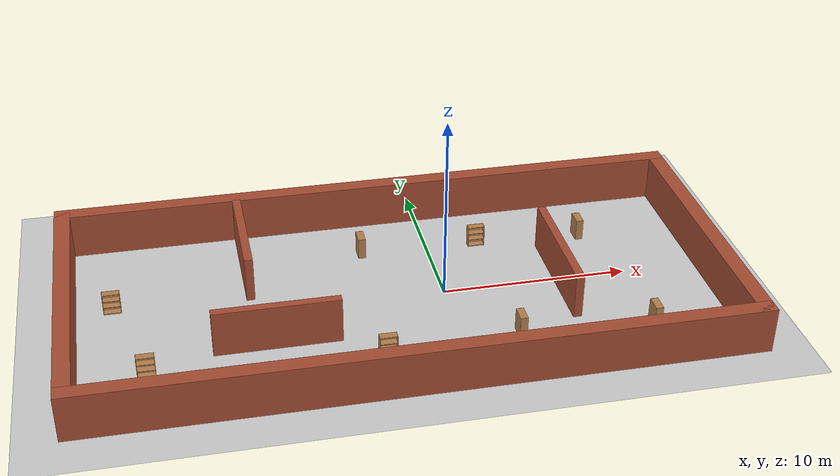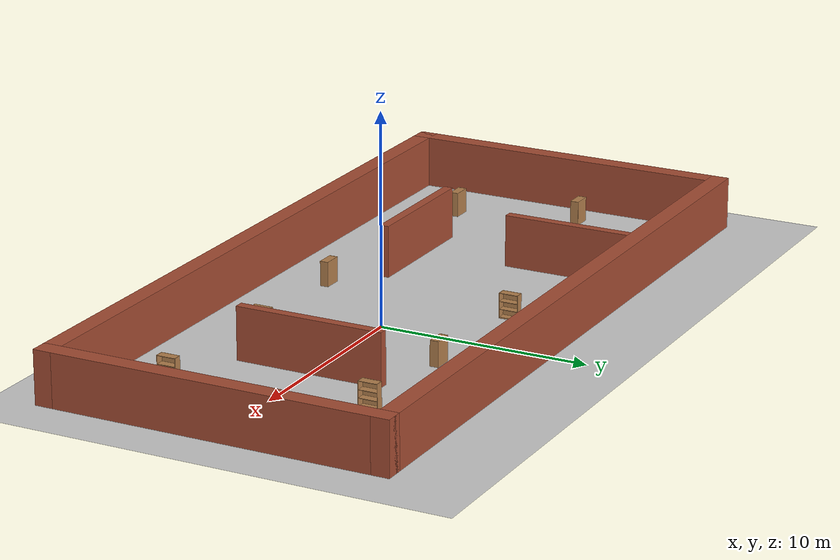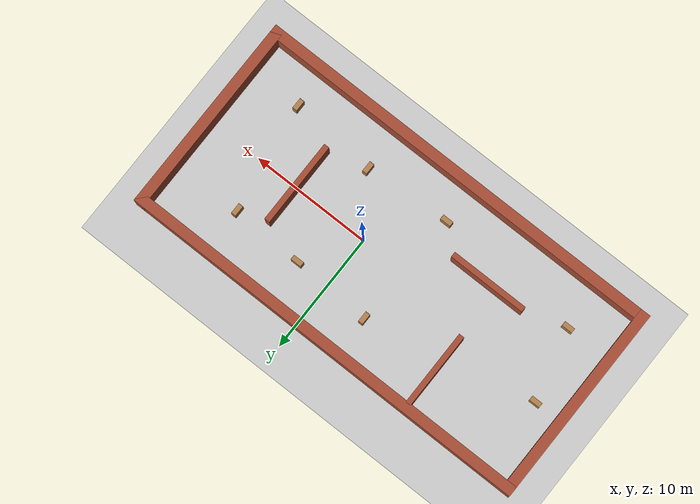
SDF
<sdf version="1.6">
 <world name="default">
  <light name="sun" type="directional">
   <pose>0 0 10 0 -0 0</pose>
   <diffuse>0.8 0.8 0.8 1</diffuse>
   <specular>0.1 0.1 0.1 1</specular>
   <attenuation>
    <range>1000</range>
    <constant>0.9</constant>
    <linear>0.01</linear>
    <quadratic>0.001</quadratic>
   </attenuation>
   <direction>-0.5 0.5 -1</direction>
  </light>
  <model name="ground_plane">
   <static>1</static>
   <link name="link">
    <collision name="collision">
     <geometry><plane><normal>0 0 1</normal><size>100 100</size></plane></geometry>
     <surface><friction><ode><mu>100</mu><mu2>50</mu2></ode></friction></surface>
    </collision>
    <visual name="visual">
     <cast_shadows>0</cast_shadows>
     <geometry><plane><normal>0 0 1</normal><size>100 100</size></plane></geometry>
     <material>
      <script><uri>file://media/materials/scripts/gazebo.material</uri><name>Gazebo/Grey</name></script>
     </material>
    </visual>
   </link>
  </model>
  <gravity>0 0 -9.8</gravity>
  <magnetic_field>6e-06 2.3e-05 -4.2e-05</magnetic_field>
  <atmosphere type="adiabatic"/>
  <physics name="default_physics" default="0" type="ode">
   <max_step_size>0.001</max_step_size>
   <real_time_factor>1</real_time_factor>
   <real_time_update_rate>1000</real_time_update_rate>
  </physics>
  <scene><ambient>0.4 0.4 0.4 1</ambient><background>0.7 0.7 0.7 1</background><shadows>1</shadows></scene>
  <spherical_coordinates>
   <surface_model>EARTH_WGS84</surface_model>
   <latitude_deg>0</latitude_deg>
   <longitude_deg>0</longitude_deg>
   <elevation>0</elevation>
   <heading_deg>0</heading_deg>
  </spherical_coordinates>
  <model name="fun">
   <pose>-2.6 -0.04 0 0 -0 0</pose>
   <link name="Wall_10">
    <collision name="Wall_10_Collision">
     <geometry><box><size>16.6995 0.85 2.5</size></box></geometry>
     <pose>0 0 1.25 0 -0 0</pose>
    </collision>
    <visual name="Wall_10_Visual">
     <pose>0 0 1.25 0 -0 0</pose>
     <geometry><box><size>16.6995 0.85 2.5</size></box></geometry>
     <material>
      <script><uri>file://media/materials/scripts/gazebo.material</uri><name>Gazebo/Bricks</name></script>
      <ambient>1 1 1 1</ambient>
     </material>
    </visual>
    <pose>-17.05 0 0 0 0 -1.5708</pose>
   </link>
   <link name="Wall_12">
    <collision name="Wall_12_Collision">
     <geometry><box><size>7.05016 0.45 2.5</size></box></geometry>
     <pose>0 0 1.25 0 -0 0</pose>
    </collision>
    <visual name="Wall_12_Visual">
     <pose>0 0 1.25 0 -0 0</pose>
     <geometry><box><size>7.05016 0.45 2.5</size></box></geometry>
     <material>
      <script><uri>file://media/materials/scripts/gazebo.material</uri><name>Gazebo/Bricks</name></script>
      <ambient>1 1 1 1</ambient>
     </material>
    </visual>
    <pose>8.87 -0.038 0 0 0 -1.5708</pose>
   </link>
   <link name="Wall_14">
    <collision name="Wall_14_Collision">
     <geometry><box><size>6.54989 0.45 2.5</size></box></geometry>
     <pose>0 0 1.25 0 -0 0</pose>
    </collision>
    <visual name="Wall_14_Visual">
     <pose>0 0 1.25 0 -0 0</pose>
     <geometry><box><size>6.54989 0.45 2.5</size></box></geometry>
     <material>
      <script><uri>file://media/materials/scripts/gazebo.material</uri><name>Gazebo/Bricks</name></script>
      <ambient>1 1 1 1</ambient>
     </material>
    </visual>
    <pose>-6.645 -2.998 0 0 -0 0</pose>
   </link>
   <link name="Wall_16">
    <collision name="Wall_16_Collision">
     <geometry><box><size>6.30047 0.45 2.5</size></box></geometry>
     <pose>0 0 1.25 0 -0 0</pose>
    </collision>
    <visual name="Wall_16_Visual">
     <pose>0 0 1.25 0 -0 0</pose>
     <geometry><box><size>6.30047 0.45 2.5</size></box></geometry>
     <material>
      <script><uri>file://media/materials/scripts/gazebo.material</uri><name>Gazebo/Bricks</name></script>
      <ambient>1 1 1 1</ambient>
     </material>
    </visual>
    <pose>-7.555 4.457 0 0 0 -1.5708</pose>
   </link>
   <link name="Wall_5">
    <collision name="Wall_5_Collision">
     <geometry><box><size>34.9504 0.85 2.5</size></box></geometry>
     <pose>0 0 1.25 0 -0 0</pose>
    </collision>
    <visual name="Wall_5_Visual">
     <pose>0 0 1.25 0 -0 0</pose>
     <geometry><box><size>34.9504 0.85 2.5</size></box></geometry>
     <material>
      <script><uri>file://media/materials/scripts/gazebo.material</uri><name>Gazebo/Bricks</name></script>
      <ambient>1 1 1 1</ambient>
     </material>
    </visual>
    <pose>0 7.925 0 0 -0 0</pose>
   </link>
   <link name="Wall_6">
    <collision name="Wall_6_Collision">
     <geometry><box><size>16.7 0.85 2.5</size></box></geometry>
     <pose>0 0 1.25 0 -0 0</pose>
    </collision>
    <visual name="Wall_6_Visual">
     <pose>0 0 1.25 0 -0 0</pose>
     <geometry><box><size>16.7 0.85 2.5</size></box></geometry>
     <material>
      <script><uri>file://media/materials/scripts/gazebo.material</uri><name>Gazebo/Bricks</name></script>
      <ambient>1 1 1 1</ambient>
     </material>
    </visual>
    <pose>17.05 0 0 0 0 -1.5708</pose>
   </link>
   <link name="Wall_7">
    <collision name="Wall_7_Collision">
     <geometry><box><size>34.95 0.85 2.5</size></box></geometry>
     <pose>0 0 1.25 0 -0 0</pose>
    </collision>
    <visual name="Wall_7_Visual">
     <pose>0 0 1.25 0 -0 0</pose>
     <geometry><box><size>34.95 0.85 2.5</size></box></geometry>
     <material>
      <script><uri>file://media/materials/scripts/gazebo.material</uri><name>Gazebo/Bricks</name></script>
      <ambient>1 1 1 1</ambient>
     </material>
    </visual>
    <pose>0 -7.925 0 0 -0 3.14159</pose>
   </link>
   <static>1</static>
  </model>
  <model name="bookshelf_clone">
   <static>1</static>
   <link name="link">
    <inertial><mass>1</mass></inertial>
    <collision name="back">
     <pose>0 0.005 0.6 0 -0 0</pose>
     <geometry><box><size>0.9 0.01 1.2</size></box></geometry>
    </collision>
    <visual name="visual1">
     <pose>0 0.005 0.6 0 -0 0</pose>
     <geometry><box><size>0.9 0.01 1.2</size></box></geometry>
     <material>
      <script><uri>file://media/materials/scripts/gazebo.material</uri><name>Gazebo/Wood</name></script>
     </material>
    </visual>
    <collision name="left_side">
     <pose>0.45 -0.195 0.6 0 -0 0</pose>
     <geometry><box><size>0.02 0.4 1.2</size></box></geometry>
    </collision>
    <visual name="visual2">
     <pose>0.45 -0.195 0.6 0 -0 0</pose>
     <geometry><box><size>0.02 0.4 1.2</size></box></geometry>
     <material>
      <script><uri>file://media/materials/scripts/gazebo.material</uri><name>Gazebo/Wood</name></script>
     </material>
    </visual>
    <collision name="right_side">
     <pose>-0.45 -0.195 0.6 0 -0 0</pose>
     <geometry><box><size>0.02 0.4 1.2</size></box></geometry>
    </collision>
    <visual name="visual3">
     <pose>-0.45 -0.195 0.6 0 -0 0</pose>
     <geometry><box><size>0.02 0.4 1.2</size></box></geometry>
     <material>
      <script><uri>file://media/materials/scripts/gazebo.material</uri><name>Gazebo/Wood</name></script>
     </material>
    </visual>
    <collision name="bottom">
     <pose>0 -0.195 0.03 0 -0 0</pose>
     <geometry><box><size>0.88 0.4 0.06</size></box></geometry>
    </collision>
    <visual name="visual4">
     <pose>0 -0.195 0.03 0 -0 0</pose>
     <geometry><box><size>0.88 0.4 0.06</size></box></geometry>
     <material>
      <script><uri>file://media/materials/scripts/gazebo.material</uri><name>Gazebo/Wood</name></script>
     </material>
    </visual>
    <collision name="top">
     <pose>0 -0.195 1.19 0 -0 0</pose>
     <geometry><box><size>0.88 0.4 0.02</size></box></geometry>
    </collision>
    <visual name="visual5">
     <pose>0 -0.195 1.19 0 -0 0</pose>
     <geometry><box><size>0.88 0.4 0.02</size></box></geometry>
     <material>
      <script><uri>file://media/materials/scripts/gazebo.material</uri><name>Gazebo/Wood</name></script>
     </material>
    </visual>
    <collision name="low_shelf">
     <pose>0 -0.195 0.43 0 -0 0</pose>
     <geometry><box><size>0.88 0.4 0.02</size></box></geometry>
    </collision>
    <visual name="visual6">
     <pose>0 -0.195 0.43 0 -0 0</pose>
     <geometry><box><size>0.88 0.4 0.02</size></box></geometry>
     <material>
      <script><uri>file://media/materials/scripts/gazebo.material</uri><name>Gazebo/Wood</name></script>
     </material>
    </visual>
    <collision name="high_shelf">
     <pose>0 -0.195 0.8 0 -0 0</pose>
     <geometry><box><size>0.88 0.4 0.02</size></box></geometry>
    </collision>
    <visual name="visual7">
     <pose>0 -0.195 0.8 0 -0 0</pose>
     <geometry><box><size>0.88 0.4 0.02</size></box></geometry>
     <material>
      <script><uri>file://media/materials/scripts/gazebo.material</uri><name>Gazebo/Wood</name></script>
     </material>
    </visual>
   </link>
   <pose>2.79544 4.49303 0 0 -0 0</pose>
  </model>
  <model name="bookshelf_clone_0">
   <static>1</static>
   <link name="link">
    <inertial><mass>1</mass></inertial>
    <collision name="back">
     <pose>0 0.005 0.6 0 -0 0</pose>
     <geometry><box><size>0.9 0.01 1.2</size></box></geometry>
    </collision>
    <visual name="visual1">
     <pose>0 0.005 0.6 0 -0 0</pose>
     <geometry><box><size>0.9 0.01 1.2</size></box></geometry>
     <material>
      <script><uri>file://media/materials/scripts/gazebo.material</uri><name>Gazebo/Wood</name></script>
     </material>
    </visual>
    <collision name="left_side">
     <pose>0.45 -0.195 0.6 0 -0 0</pose>
     <geometry><box><size>0.02 0.4 1.2</size></box></geometry>
    </collision>
    <visual name="visual2">
     <pose>0.45 -0.195 0.6 0 -0 0</pose>
     <geometry><box><size>0.02 0.4 1.2</size></box></geometry>
     <material>
      <script><uri>file://media/materials/scripts/gazebo.material</uri><name>Gazebo/Wood</name></script>
     </material>
    </visual>
    <collision name="right_side">
     <pose>-0.45 -0.195 0.6 0 -0 0</pose>
     <geometry><box><size>0.02 0.4 1.2</size></box></geometry>
    </collision>
    <visual name="visual3">
     <pose>-0.45 -0.195 0.6 0 -0 0</pose>
     <geometry><box><size>0.02 0.4 1.2</size></box></geometry>
     <material>
      <script><uri>file://media/materials/scripts/gazebo.material</uri><name>Gazebo/Wood</name></script>
     </material>
    </visual>
    <collision name="bottom">
     <pose>0 -0.195 0.03 0 -0 0</pose>
     <geometry><box><size>0.88 0.4 0.06</size></box></geometry>
    </collision>
    <visual name="visual4">
     <pose>0 -0.195 0.03 0 -0 0</pose>
     <geometry><box><size>0.88 0.4 0.06</size></box></geometry>
     <material>
      <script><uri>file://media/materials/scripts/gazebo.material</uri><name>Gazebo/Wood</name></script>
     </material>
    </visual>
    <collision name="top">
     <pose>0 -0.195 1.19 0 -0 0</pose>
     <geometry><box><size>0.88 0.4 0.02</size></box></geometry>
    </collision>
    <visual name="visual5">
     <pose>0 -0.195 1.19 0 -0 0</pose>
     <geometry><box><size>0.88 0.4 0.02</size></box></geometry>
     <material>
      <script><uri>file://media/materials/scripts/gazebo.material</uri><name>Gazebo/Wood</name></script>
     </material>
    </visual>
    <collision name="low_shelf">
     <pose>0 -0.195 0.43 0 -0 0</pose>
     <geometry><box><size>0.88 0.4 0.02</size></box></geometry>
    </collision>
    <visual name="visual6">
     <pose>0 -0.195 0.43 0 -0 0</pose>
     <geometry><box><size>0.88 0.4 0.02</size></box></geometry>
     <material>
      <script><uri>file://media/materials/scripts/gazebo.material</uri><name>Gazebo/Wood</name></script>
     </material>
    </visual>
    <collision name="high_shelf">
     <pose>0 -0.195 0.8 0 -0 0</pose>
     <geometry><box><size>0.88 0.4 0.02</size></box></geometry>
    </collision>
    <visual name="visual7">
     <pose>0 -0.195 0.8 0 -0 0</pose>
     <geometry><box><size>0.88 0.4 0.02</size></box></geometry>
     <material>
      <script><uri>file://media/materials/scripts/gazebo.material</uri><name>Gazebo/Wood</name></script>
     </material>
    </visual>
   </link>
   <pose>2.81978 -4.37773 0 0 -0 1.57</pose>
  </model>
  <model name="bookshelf_clone_0_clone">
   <static>1</static>
   <link name="link">
    <inertial><mass>1</mass></inertial>
    <collision name="back">
     <pose>0 0.005 0.6 0 -0 0</pose>
     <geometry><box><size>0.9 0.01 1.2</size></box></geometry>
    </collision>
    <visual name="visual1">
     <pose>0 0.005 0.6 0 -0 0</pose>
     <geometry><box><size>0.9 0.01 1.2</size></box></geometry>
     <material>
      <script><uri>file://media/materials/scripts/gazebo.material</uri><name>Gazebo/Wood</name></script>
     </material>
    </visual>
    <collision name="left_side">
     <pose>0.45 -0.195 0.6 0 -0 0</pose>
     <geometry><box><size>0.02 0.4 1.2</size></box></geometry>
    </collision>
    <visual name="visual2">
     <pose>0.45 -0.195 0.6 0 -0 0</pose>
     <geometry><box><size>0.02 0.4 1.2</size></box></geometry>
     <material>
      <script><uri>file://media/materials/scripts/gazebo.material</uri><name>Gazebo/Wood</name></script>
     </material>
    </visual>
    <collision name="right_side">
     <pose>-0.45 -0.195 0.6 0 -0 0</pose>
     <geometry><box><size>0.02 0.4 1.2</size></box></geometry>
    </collision>
    <visual name="visual3">
     <pose>-0.45 -0.195 0.6 0 -0 0</pose>
     <geometry><box><size>0.02 0.4 1.2</size></box></geometry>
     <material>
      <script><uri>file://media/materials/scripts/gazebo.material</uri><name>Gazebo/Wood</name></script>
     </material>
    </visual>
    <collision name="bottom">
     <pose>0 -0.195 0.03 0 -0 0</pose>
     <geometry><box><size>0.88 0.4 0.06</size></box></geometry>
    </collision>
    <visual name="visual4">
     <pose>0 -0.195 0.03 0 -0 0</pose>
     <geometry><box><size>0.88 0.4 0.06</size></box></geometry>
     <material>
      <script><uri>file://media/materials/scripts/gazebo.material</uri><name>Gazebo/Wood</name></script>
     </material>
    </visual>
    <collision name="top">
     <pose>0 -0.195 1.19 0 -0 0</pose>
     <geometry><box><size>0.88 0.4 0.02</size></box></geometry>
    </collision>
    <visual name="visual5">
     <pose>0 -0.195 1.19 0 -0 0</pose>
     <geometry><box><size>0.88 0.4 0.02</size></box></geometry>
     <material>
      <script><uri>file://media/materials/scripts/gazebo.material</uri><name>Gazebo/Wood</name></script>
     </material>
    </visual>
    <collision name="low_shelf">
     <pose>0 -0.195 0.43 0 -0 0</pose>
     <geometry><box><size>0.88 0.4 0.02</size></box></geometry>
    </collision>
    <visual name="visual6">
     <pose>0 -0.195 0.43 0 -0 0</pose>
     <geometry><box><size>0.88 0.4 0.02</size></box></geometry>
     <material>
      <script><uri>file://media/materials/scripts/gazebo.material</uri><name>Gazebo/Wood</name></script>
     </material>
    </visual>
    <collision name="high_shelf">
     <pose>0 -0.195 0.8 0 -0 0</pose>
     <geometry><box><size>0.88 0.4 0.02</size></box></geometry>
    </collision>
    <visual name="visual7">
     <pose>0 -0.195 0.8 0 -0 0</pose>
     <geometry><box><size>0.88 0.4 0.02</size></box></geometry>
     <material>
      <script><uri>file://media/materials/scripts/gazebo.material</uri><name>Gazebo/Wood</name></script>
     </material>
    </visual>
   </link>
   <pose>-3.98258 -4.68046 0 0 -0 0</pose>
  </model>
  <model name="bookshelf_clone_clone">
   <static>1</static>
   <link name="link">
    <inertial><mass>1</mass></inertial>
    <collision name="back">
     <pose>0 0.005 0.6 0 -0 0</pose>
     <geometry><box><size>0.9 0.01 1.2</size></box></geometry>
    </collision>
    <visual name="visual1">
     <pose>0 0.005 0.6 0 -0 0</pose>
     <geometry><box><size>0.9 0.01 1.2</size></box></geometry>
     <material>
      <script><uri>file://media/materials/scripts/gazebo.material</uri><name>Gazebo/Wood</name></script>
     </material>
    </visual>
    <collision name="left_side">
     <pose>0.45 -0.195 0.6 0 -0 0</pose>
     <geometry><box><size>0.02 0.4 1.2</size></box></geometry>
    </collision>
    <visual name="visual2">
     <pose>0.45 -0.195 0.6 0 -0 0</pose>
     <geometry><box><size>0.02 0.4 1.2</size></box></geometry>
     <material>
      <script><uri>file://media/materials/scripts/gazebo.material</uri><name>Gazebo/Wood</name></script>
     </material>
    </visual>
    <collision name="right_side">
     <pose>-0.45 -0.195 0.6 0 -0 0</pose>
     <geometry><box><size>0.02 0.4 1.2</size></box></geometry>
    </collision>
    <visual name="visual3">
     <pose>-0.45 -0.195 0.6 0 -0 0</pose>
     <geometry><box><size>0.02 0.4 1.2</size></box></geometry>
     <material>
      <script><uri>file://media/materials/scripts/gazebo.material</uri><name>Gazebo/Wood</name></script>
     </material>
    </visual>
    <collision name="bottom">
     <pose>0 -0.195 0.03 0 -0 0</pose>
     <geometry><box><size>0.88 0.4 0.06</size></box></geometry>
    </collision>
    <visual name="visual4">
     <pose>0 -0.195 0.03 0 -0 0</pose>
     <geometry><box><size>0.88 0.4 0.06</size></box></geometry>
     <material>
      <script><uri>file://media/materials/scripts/gazebo.material</uri><name>Gazebo/Wood</name></script>
     </material>
    </visual>
    <collision name="top">
     <pose>0 -0.195 1.19 0 -0 0</pose>
     <geometry><box><size>0.88 0.4 0.02</size></box></geometry>
    </collision>
    <visual name="visual5">
     <pose>0 -0.195 1.19 0 -0 0</pose>
     <geometry><box><size>0.88 0.4 0.02</size></box></geometry>
     <material>
      <script><uri>file://media/materials/scripts/gazebo.material</uri><name>Gazebo/Wood</name></script>
     </material>
    </visual>
    <collision name="low_shelf">
     <pose>0 -0.195 0.43 0 -0 0</pose>
     <geometry><box><size>0.88 0.4 0.02</size></box></geometry>
    </collision>
    <visual name="visual6">
     <pose>0 -0.195 0.43 0 -0 0</pose>
     <geometry><box><size>0.88 0.4 0.02</size></box></geometry>
     <material>
      <script><uri>file://media/materials/scripts/gazebo.material</uri><name>Gazebo/Wood</name></script>
     </material>
    </visual>
    <collision name="high_shelf">
     <pose>0 -0.195 0.8 0 -0 0</pose>
     <geometry><box><size>0.88 0.4 0.02</size></box></geometry>
    </collision>
    <visual name="visual7">
     <pose>0 -0.195 0.8 0 -0 0</pose>
     <geometry><box><size>0.88 0.4 0.02</size></box></geometry>
     <material>
      <script><uri>file://media/materials/scripts/gazebo.material</uri><name>Gazebo/Wood</name></script>
     </material>
    </visual>
   </link>
   <pose>-3.87256 4.55709 0 0 -0 1.57</pose>
  </model>
  <model name="bookshelf_clone_0_clone_clone">
   <static>1</static>
   <link name="link">
    <inertial><mass>1</mass></inertial>
    <collision name="back">
     <pose>0 0.005 0.6 0 -0 0</pose>
     <geometry><box><size>0.9 0.01 1.2</size></box></geometry>
    </collision>
    <visual name="visual1">
     <pose>0 0.005 0.6 0 -0 0</pose>
     <geometry><box><size>0.9 0.01 1.2</size></box></geometry>
     <material>
      <script><uri>file://media/materials/scripts/gazebo.material</uri><name>Gazebo/Wood</name></script>
     </material>
    </visual>
    <collision name="left_side">
     <pose>0.45 -0.195 0.6 0 -0 0</pose>
     <geometry><box><size>0.02 0.4 1.2</size></box></geometry>
    </collision>
    <visual name="visual2">
     <pose>0.45 -0.195 0.6 0 -0 0</pose>
     <geometry><box><size>0.02 0.4 1.2</size></box></geometry>
     <material>
      <script><uri>file://media/materials/scripts/gazebo.material</uri><name>Gazebo/Wood</name></script>
     </material>
    </visual>
    <collision name="right_side">
     <pose>-0.45 -0.195 0.6 0 -0 0</pose>
     <geometry><box><size>0.02 0.4 1.2</size></box></geometry>
    </collision>
    <visual name="visual3">
     <pose>-0.45 -0.195 0.6 0 -0 0</pose>
     <geometry><box><size>0.02 0.4 1.2</size></box></geometry>
     <material>
      <script><uri>file://media/materials/scripts/gazebo.material</uri><name>Gazebo/Wood</name></script>
     </material>
    </visual>
    <collision name="bottom">
     <pose>0 -0.195 0.03 0 -0 0</pose>
     <geometry><box><size>0.88 0.4 0.06</size></box></geometry>
    </collision>
    <visual name="visual4">
     <pose>0 -0.195 0.03 0 -0 0</pose>
     <geometry><box><size>0.88 0.4 0.06</size></box></geometry>
     <material>
      <script><uri>file://media/materials/scripts/gazebo.material</uri><name>Gazebo/Wood</name></script>
     </material>
    </visual>
    <collision name="top">
     <pose>0 -0.195 1.19 0 -0 0</pose>
     <geometry><box><size>0.88 0.4 0.02</size></box></geometry>
    </collision>
    <visual name="visual5">
     <pose>0 -0.195 1.19 0 -0 0</pose>
     <geometry><box><size>0.88 0.4 0.02</size></box></geometry>
     <material>
      <script><uri>file://media/materials/scripts/gazebo.material</uri><name>Gazebo/Wood</name></script>
     </material>
    </visual>
    <collision name="low_shelf">
     <pose>0 -0.195 0.43 0 -0 0</pose>
     <geometry><box><size>0.88 0.4 0.02</size></box></geometry>
    </collision>
    <visual name="visual6">
     <pose>0 -0.195 0.43 0 -0 0</pose>
     <geometry><box><size>0.88 0.4 0.02</size></box></geometry>
     <material>
      <script><uri>file://media/materials/scripts/gazebo.material</uri><name>Gazebo/Wood</name></script>
     </material>
    </visual>
    <collision name="high_shelf">
     <pose>0 -0.195 0.8 0 -0 0</pose>
     <geometry><box><size>0.88 0.4 0.02</size></box></geometry>
    </collision>
    <visual name="visual7">
     <pose>0 -0.195 0.8 0 -0 0</pose>
     <geometry><box><size>0.88 0.4 0.02</size></box></geometry>
     <material>
      <script><uri>file://media/materials/scripts/gazebo.material</uri><name>Gazebo/Wood</name></script>
     </material>
    </visual>
   </link>
   <pose>-15.8651 -4.0013 0 0 -0 0</pose>
  </model>
  <model name="bookshelf_clone_0_clone_clone_clone">
   <static>1</static>
   <link name="link">
    <inertial><mass>1</mass></inertial>
    <collision name="back">
     <pose>0 0.005 0.6 0 -0 0</pose>
     <geometry><box><size>0.9 0.01 1.2</size></box></geometry>
    </collision>
    <visual name="visual1">
     <pose>0 0.005 0.6 0 -0 0</pose>
     <geometry><box><size>0.9 0.01 1.2</size></box></geometry>
     <material>
      <script><uri>file://media/materials/scripts/gazebo.material</uri><name>Gazebo/Wood</name></script>
     </material>
    </visual>
    <collision name="left_side">
     <pose>0.45 -0.195 0.6 0 -0 0</pose>
     <geometry><box><size>0.02 0.4 1.2</size></box></geometry>
    </collision>
    <visual name="visual2">
     <pose>0.45 -0.195 0.6 0 -0 0</pose>
     <geometry><box><size>0.02 0.4 1.2</size></box></geometry>
     <material>
      <script><uri>file://media/materials/scripts/gazebo.material</uri><name>Gazebo/Wood</name></script>
     </material>
    </visual>
    <collision name="right_side">
     <pose>-0.45 -0.195 0.6 0 -0 0</pose>
     <geometry><box><size>0.02 0.4 1.2</size></box></geometry>
    </collision>
    <visual name="visual3">
     <pose>-0.45 -0.195 0.6 0 -0 0</pose>
     <geometry><box><size>0.02 0.4 1.2</size></box></geometry>
     <material>
      <script><uri>file://media/materials/scripts/gazebo.material</uri><name>Gazebo/Wood</name></script>
     </material>
    </visual>
    <collision name="bottom">
     <pose>0 -0.195 0.03 0 -0 0</pose>
     <geometry><box><size>0.88 0.4 0.06</size></box></geometry>
    </collision>
    <visual name="visual4">
     <pose>0 -0.195 0.03 0 -0 0</pose>
     <geometry><box><size>0.88 0.4 0.06</size></box></geometry>
     <material>
      <script><uri>file://media/materials/scripts/gazebo.material</uri><name>Gazebo/Wood</name></script>
     </material>
    </visual>
    <collision name="top">
     <pose>0 -0.195 1.19 0 -0 0</pose>
     <geometry><box><size>0.88 0.4 0.02</size></box></geometry>
    </collision>
    <visual name="visual5">
     <pose>0 -0.195 1.19 0 -0 0</pose>
     <geometry><box><size>0.88 0.4 0.02</size></box></geometry>
     <material>
      <script><uri>file://media/materials/scripts/gazebo.material</uri><name>Gazebo/Wood</name></script>
     </material>
    </visual>
    <collision name="low_shelf">
     <pose>0 -0.195 0.43 0 -0 0</pose>
     <geometry><box><size>0.88 0.4 0.02</size></box></geometry>
    </collision>
    <visual name="visual6">
     <pose>0 -0.195 0.43 0 -0 0</pose>
     <geometry><box><size>0.88 0.4 0.02</size></box></geometry>
     <material>
      <script><uri>file://media/materials/scripts/gazebo.material</uri><name>Gazebo/Wood</name></script>
     </material>
    </visual>
    <collision name="high_shelf">
     <pose>0 -0.195 0.8 0 -0 0</pose>
     <geometry><box><size>0.88 0.4 0.02</size></box></geometry>
    </collision>
    <visual name="visual7">
     <pose>0 -0.195 0.8 0 -0 0</pose>
     <geometry><box><size>0.88 0.4 0.02</size></box></geometry>
     <material>
      <script><uri>file://media/materials/scripts/gazebo.material</uri><name>Gazebo/Wood</name></script>
     </material>
    </visual>
   </link>
   <pose>-17.3508 1.79696 0 0 -0 0</pose>
  </model>
  <model name="bookshelf_clone_0_clone_clone_0_clone">
   <static>1</static>
   <link name="link">
    <inertial><mass>1</mass></inertial>
    <collision name="back">
     <pose>0 0.005 0.6 0 -0 0</pose>
     <geometry><box><size>0.9 0.01 1.2</size></box></geometry>
    </collision>
    <visual name="visual1">
     <pose>0 0.005 0.6 0 -0 0</pose>
     <geometry><box><size>0.9 0.01 1.2</size></box></geometry>
     <material>
      <script><uri>file://media/materials/scripts/gazebo.material</uri><name>Gazebo/Wood</name></script>
     </material>
    </visual>
    <collision name="left_side">
     <pose>0.45 -0.195 0.6 0 -0 0</pose>
     <geometry><box><size>0.02 0.4 1.2</size></box></geometry>
    </collision>
    <visual name="visual2">
     <pose>0.45 -0.195 0.6 0 -0 0</pose>
     <geometry><box><size>0.02 0.4 1.2</size></box></geometry>
     <material>
      <script><uri>file://media/materials/scripts/gazebo.material</uri><name>Gazebo/Wood</name></script>
     </material>
    </visual>
    <collision name="right_side">
     <pose>-0.45 -0.195 0.6 0 -0 0</pose>
     <geometry><box><size>0.02 0.4 1.2</size></box></geometry>
    </collision>
    <visual name="visual3">
     <pose>-0.45 -0.195 0.6 0 -0 0</pose>
     <geometry><box><size>0.02 0.4 1.2</size></box></geometry>
     <material>
      <script><uri>file://media/materials/scripts/gazebo.material</uri><name>Gazebo/Wood</name></script>
     </material>
    </visual>
    <collision name="bottom">
     <pose>0 -0.195 0.03 0 -0 0</pose>
     <geometry><box><size>0.88 0.4 0.06</size></box></geometry>
    </collision>
    <visual name="visual4">
     <pose>0 -0.195 0.03 0 -0 0</pose>
     <geometry><box><size>0.88 0.4 0.06</size></box></geometry>
     <material>
      <script><uri>file://media/materials/scripts/gazebo.material</uri><name>Gazebo/Wood</name></script>
     </material>
    </visual>
    <collision name="top">
     <pose>0 -0.195 1.19 0 -0 0</pose>
     <geometry><box><size>0.88 0.4 0.02</size></box></geometry>
    </collision>
    <visual name="visual5">
     <pose>0 -0.195 1.19 0 -0 0</pose>
     <geometry><box><size>0.88 0.4 0.02</size></box></geometry>
     <material>
      <script><uri>file://media/materials/scripts/gazebo.material</uri><name>Gazebo/Wood</name></script>
     </material>
    </visual>
    <collision name="low_shelf">
     <pose>0 -0.195 0.43 0 -0 0</pose>
     <geometry><box><size>0.88 0.4 0.02</size></box></geometry>
    </collision>
    <visual name="visual6">
     <pose>0 -0.195 0.43 0 -0 0</pose>
     <geometry><box><size>0.88 0.4 0.02</size></box></geometry>
     <material>
      <script><uri>file://media/materials/scripts/gazebo.material</uri><name>Gazebo/Wood</name></script>
     </material>
    </visual>
    <collision name="high_shelf">
     <pose>0 -0.195 0.8 0 -0 0</pose>
     <geometry><box><size>0.88 0.4 0.02</size></box></geometry>
    </collision>
    <visual name="visual7">
     <pose>0 -0.195 0.8 0 -0 0</pose>
     <geometry><box><size>0.88 0.4 0.02</size></box></geometry>
     <material>
      <script><uri>file://media/materials/scripts/gazebo.material</uri><name>Gazebo/Wood</name></script>
     </material>
    </visual>
   </link>
   <pose>8.461 4.08042 0 0 -0 1.57</pose>
  </model>
  <model name="bookshelf_clone_0_clone_clone_0_clone_clone">
   <static>1</static>
   <link name="link">
    <inertial><mass>1</mass></inertial>
    <collision name="back">
     <pose>0 0.005 0.6 0 -0 0</pose>
     <geometry><box><size>0.9 0.01 1.2</size></box></geometry>
    </collision>
    <visual name="visual1">
     <pose>0 0.005 0.6 0 -0 0</pose>
     <geometry><box><size>0.9 0.01 1.2</size></box></geometry>
     <material>
      <script><uri>file://media/materials/scripts/gazebo.material</uri><name>Gazebo/Wood</name></script>
     </material>
    </visual>
    <collision name="left_side">
     <pose>0.45 -0.195 0.6 0 -0 0</pose>
     <geometry><box><size>0.02 0.4 1.2</size></box></geometry>
    </collision>
    <visual name="visual2">
     <pose>0.45 -0.195 0.6 0 -0 0</pose>
     <geometry><box><size>0.02 0.4 1.2</size></box></geometry>
     <material>
      <script><uri>file://media/materials/scripts/gazebo.material</uri><name>Gazebo/Wood</name></script>
     </material>
    </visual>
    <collision name="right_side">
     <pose>-0.45 -0.195 0.6 0 -0 0</pose>
     <geometry><box><size>0.02 0.4 1.2</size></box></geometry>
    </collision>
    <visual name="visual3">
     <pose>-0.45 -0.195 0.6 0 -0 0</pose>
     <geometry><box><size>0.02 0.4 1.2</size></box></geometry>
     <material>
      <script><uri>file://media/materials/scripts/gazebo.material</uri><name>Gazebo/Wood</name></script>
     </material>
    </visual>
    <collision name="bottom">
     <pose>0 -0.195 0.03 0 -0 0</pose>
     <geometry><box><size>0.88 0.4 0.06</size></box></geometry>
    </collision>
    <visual name="visual4">
     <pose>0 -0.195 0.03 0 -0 0</pose>
     <geometry><box><size>0.88 0.4 0.06</size></box></geometry>
     <material>
      <script><uri>file://media/materials/scripts/gazebo.material</uri><name>Gazebo/Wood</name></script>
     </material>
    </visual>
    <collision name="top">
     <pose>0 -0.195 1.19 0 -0 0</pose>
     <geometry><box><size>0.88 0.4 0.02</size></box></geometry>
    </collision>
    <visual name="visual5">
     <pose>0 -0.195 1.19 0 -0 0</pose>
     <geometry><box><size>0.88 0.4 0.02</size></box></geometry>
     <material>
      <script><uri>file://media/materials/scripts/gazebo.material</uri><name>Gazebo/Wood</name></script>
     </material>
    </visual>
    <collision name="low_shelf">
     <pose>0 -0.195 0.43 0 -0 0</pose>
     <geometry><box><size>0.88 0.4 0.02</size></box></geometry>
    </collision>
    <visual name="visual6">
     <pose>0 -0.195 0.43 0 -0 0</pose>
     <geometry><box><size>0.88 0.4 0.02</size></box></geometry>
     <material>
      <script><uri>file://media/materials/scripts/gazebo.material</uri><name>Gazebo/Wood</name></script>
     </material>
    </visual>
    <collision name="high_shelf">
     <pose>0 -0.195 0.8 0 -0 0</pose>
     <geometry><box><size>0.88 0.4 0.02</size></box></geometry>
    </collision>
    <visual name="visual7">
     <pose>0 -0.195 0.8 0 -0 0</pose>
     <geometry><box><size>0.88 0.4 0.02</size></box></geometry>
     <material>
      <script><uri>file://media/materials/scripts/gazebo.material</uri><name>Gazebo/Wood</name></script>
     </material>
    </visual>
   </link>
   <pose>9.82144 -4.87413 0 0 -0 1.57</pose>
  </model>
 </world>
</sdf>
